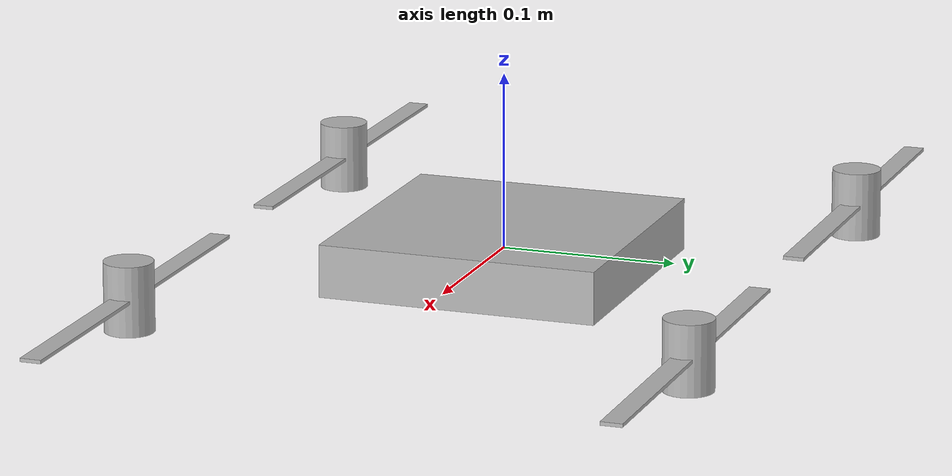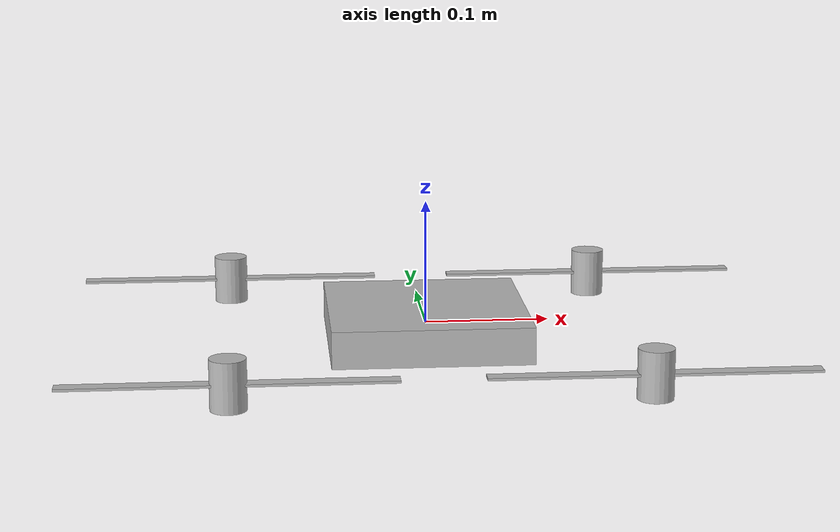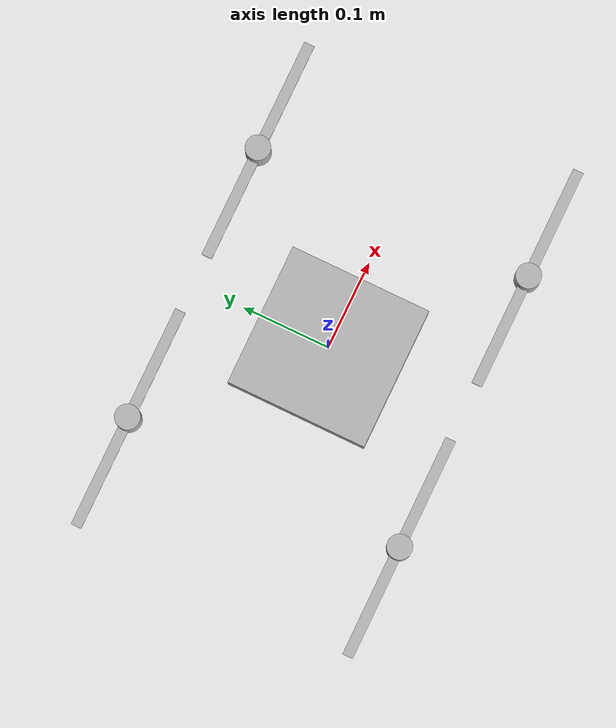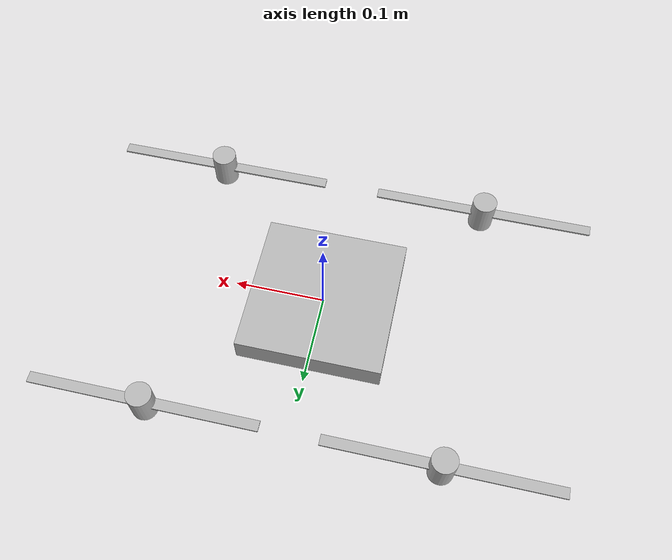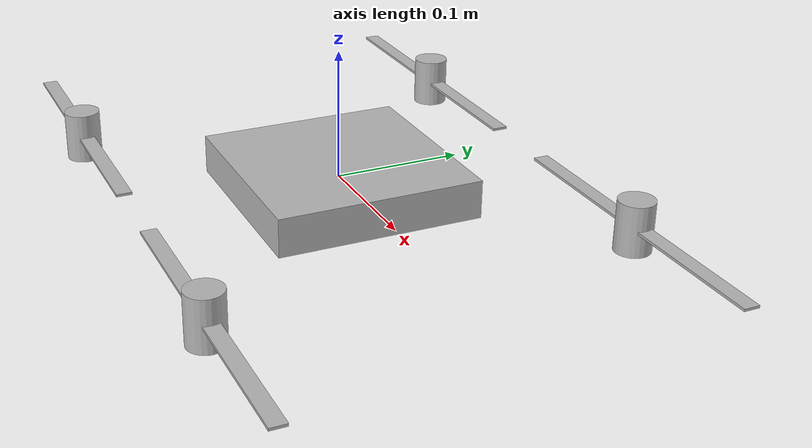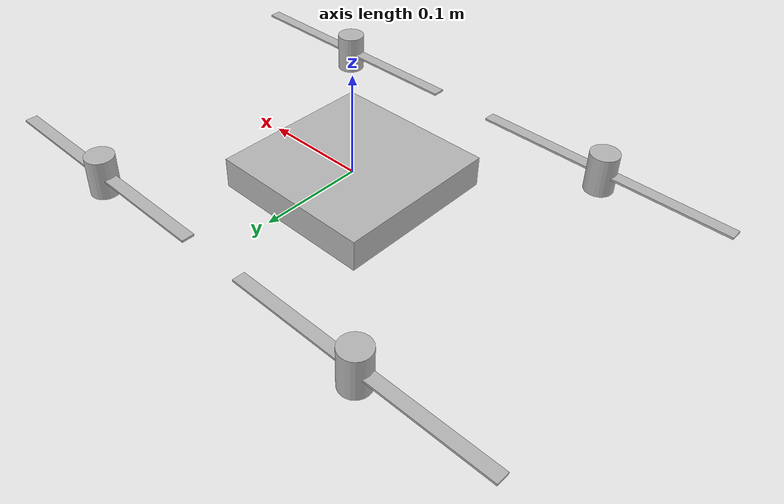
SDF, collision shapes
<?xml version="1.0" ?>
<sdf version="1.9">

  <model name="f450">

    <!-- MAIN FRAME -->

    <link name="base_link">
      <visual name="f450_cad_visual">
        <pose> -0.182 0.2783 0.14925 0 0 0 </pose>
        <geometry>
          <mesh>
            <uri>model://f450/F450 Quadcopter Frame with Pixhawk 2.4.8 Flight Controller.obj</uri>
          </mesh>
        </geometry>
      </visual>

      <pose>0 0 0 0 0 0</pose>

      <collision name="frame_collision">
        <geometry>
          <box>
            <size>0.16 0.16 0.03</size>
          </box>
        </geometry>
      </collision>

      <inertial>

        <mass>0.652</mass>

        <inertia>
          <ixx>0.00253</ixx>
          <iyy>0.00253</iyy>
          <izz>0.00506</izz>

          <ixy>0</ixy>
          <ixz>0</ixz>
          <iyz>0</iyz>
        </inertia>

      </inertial>

      <sensor name="imu_sensor" type="imu">
        <gz_frame_id>base_link</gz_frame_id>
        <always_on>1</always_on>
        <update_rate>250</update_rate>

        <imu>
          <angular_velocity>
            <x>
              <noise type="gaussian">
                <mean>0.0</mean>
                <stddev>0.0008726646</stddev>
              </noise>
            </x>
            <y>
              <noise type="gaussian">
                <mean>0.0</mean>
                <stddev>0.0008726646</stddev>
              </noise>
            </y>
            <z>
              <noise type="gaussian">
                <mean>0.0</mean>
                <stddev>0.0008726646</stddev>
              </noise>
            </z>
          </angular_velocity>

          <linear_acceleration>
            <x>
              <noise type="gaussian">
                <mean>0.0</mean>
                <stddev>0.00637</stddev>
              </noise>
            </x>
            <y>
              <noise type="gaussian">
                <mean>0.0</mean>
                <stddev>0.00637</stddev>
              </noise>
            </y>
            <z>
              <noise type="gaussian">
                <mean>0.0</mean>
                <stddev>0.00686</stddev>
              </noise>
            </z>
          </linear_acceleration>
        </imu>
      </sensor>

      <sensor name="air_pressure_sensor" type="air_pressure">
        <gz_frame_id>base_link</gz_frame_id>
        <always_on>1</always_on>
        <update_rate>50</update_rate>

        <air_pressure>
          <pressure>
            <noise type="gaussian">
              <mean>0</mean>
              <stddev>3</stddev>
            </noise>
          </pressure>
        </air_pressure>
      </sensor>

      <sensor name="magnetometer_sensor" type="magnetometer">
        <gz_frame_id>base_link</gz_frame_id>
        <always_on>1</always_on>
        <update_rate>100</update_rate>

        <magnetometer>
          <x>
            <noise type="gaussian">
              <stddev>0.0001</stddev>
            </noise>
          </x>
          <y>
            <noise type="gaussian">
              <stddev>0.0001</stddev>
            </noise>
          </y>
          <z>
            <noise type="gaussian">
              <stddev>0.0001</stddev>
            </noise>
          </z>
        </magnetometer>
      </sensor>

      <sensor name="navsat_sensor" type="navsat">
        <gz_frame_id>base_link</gz_frame_id>
        <always_on>1</always_on>
        <update_rate>30</update_rate>
      </sensor>

    </link>

    <!-- MOTOR 0 - FIXED -->

    <link name="motor_0">

      <pose>0.1591 0.1591 0 0 0 0</pose>

      <inertial>

        <mass>0.053</mass>

        <inertia>
          <ixx>8.16e-06</ixx>
          <iyy>8.16e-06</iyy>
          <izz>5.19e-06</izz>

          <ixy>0</ixy>
          <ixz>0</ixz>
          <iyz>0</iyz>
        </inertia>

      </inertial>

      <collision name="motor_collision">
        <geometry>
          <cylinder>
            <radius>0.014</radius>
            <length>0.0395</length>
          </cylinder>
        </geometry>
      </collision>

    </link>

    <!-- MOTOR 1 - FIXED -->

    <link name="motor_1">

      <pose>0.1591 -0.1591 0 0 0 0</pose>

      <inertial>

        <mass>0.053</mass>

        <inertia>
          <ixx>8.16e-06</ixx>
          <iyy>8.16e-06</iyy>
          <izz>5.19e-06</izz>

          <ixy>0</ixy>
          <ixz>0</ixz>
          <iyz>0</iyz>
        </inertia>

      </inertial>

      <collision name="motor_collision">
        <geometry>
          <cylinder>
            <radius>0.014</radius>
            <length>0.0395</length>
          </cylinder>
        </geometry>
      </collision>

    </link>

    <!-- MOTOR 2 - FIXED -->

    <link name="motor_2">

      <pose>-0.1591 0.1591 0 0 0 0</pose>

      <inertial>

        <mass>0.053</mass>

        <inertia>
          <ixx>8.16e-06</ixx>
          <iyy>8.16e-06</iyy>
          <izz>5.19e-06</izz>

          <ixy>0</ixy>
          <ixz>0</ixz>
          <iyz>0</iyz>
        </inertia>

      </inertial>

      <collision name="motor_collision">
        <geometry>
          <cylinder>
            <radius>0.014</radius>
            <length>0.0395</length>
          </cylinder>
        </geometry>
      </collision>

    </link>

    <!-- MOTOR 3 - FIXED -->

    <link name="motor_3">

      <pose>-0.1591 -0.1591 0 0 0 0</pose>

      <inertial>

        <mass>0.053</mass>

        <inertia>
          <ixx>8.16e-06</ixx>
          <iyy>8.16e-06</iyy>
          <izz>5.19e-06</izz>

          <ixy>0</ixy>
          <ixz>0</ixz>
          <iyz>0</iyz>
        </inertia>

      </inertial>

      <collision name="motor_collision">
        <geometry>
          <cylinder>
            <radius>0.014</radius>
            <length>0.0395</length>
          </cylinder>
        </geometry>
      </collision>

    </link>

    <!-- PROPELLER 0 -->

    <link name="propeller_0">

      <pose>0.1591 0.1591 0 0 0 0</pose>

      <inertial>

        <mass>0.009</mass>

        <inertia>
          <ixx>1e-8</ixx>
          <iyy>1e-8</iyy>
          <izz>1e-8</izz>

          <ixy>0</ixy>
          <ixz>0</ixz>
          <iyz>0</iyz>
        </inertia>

      </inertial>

      <collision name="propeller_collision">
        <geometry>
          <box>
            <size>0.254 0.012 0.002</size>
          </box>
        </geometry>
      </collision>

    </link>

    <!-- PROPELLER 1 -->

    <link name="propeller_1">

      <pose>0.1591 -0.1591 0 0 0 0</pose>

      <inertial>

        <mass>0.009</mass>

        <inertia>
          <ixx>1e-8</ixx>
          <iyy>1e-8</iyy>
          <izz>1e-8</izz>

          <ixy>0</ixy>
          <ixz>0</ixz>
          <iyz>0</iyz>
        </inertia>

      </inertial>

      <collision name="propeller_collision">
        <geometry>
          <box>
            <size>0.254 0.012 0.002</size>
          </box>
        </geometry>
      </collision>

    </link>

    <!-- PROPELLER 2 -->

    <link name="propeller_2">

      <pose>-0.1591 0.1591 0 0 0 0</pose>

      <inertial>

        <mass>0.009</mass>

        <inertia>
          <ixx>1e-8</ixx>
          <iyy>1e-8</iyy>
          <izz>1e-8</izz>

          <ixy>0</ixy>
          <ixz>0</ixz>
          <iyz>0</iyz>
        </inertia>

      </inertial>

      <collision name="propeller_collision">
        <geometry>
          <box>
            <size>0.254 0.012 0.002</size>
          </box>
        </geometry>
      </collision>

    </link>

    <!-- PROPELLER 3 -->

    <link name="propeller_3">

      <pose>-0.1591 -0.1591 0 0 0 0</pose>

      <inertial>

        <mass>0.009</mass>

        <inertia>
          <ixx>1e-8</ixx>
          <iyy>1e-8</iyy>
          <izz>1e-8</izz>

          <ixy>0</ixy>
          <ixz>0</ixz>
          <iyz>0</iyz>
        </inertia>

      </inertial>

      <collision name="propeller_collision">
        <geometry>
          <box>
            <size>0.254 0.012 0.002</size>
          </box>
        </geometry>
      </collision>

    </link>

    <!-- FIX MOTOR HOUSINGS -->

    <joint name="motor_0_mount" type="fixed">
      <parent>base_link</parent>
      <child>motor_0</child>
    </joint>

    <joint name="motor_1_mount" type="fixed">
      <parent>base_link</parent>
      <child>motor_1</child>
    </joint>

    <joint name="motor_2_mount" type="fixed">
      <parent>base_link</parent>
      <child>motor_2</child>
    </joint>

    <joint name="motor_3_mount" type="fixed">
      <parent>base_link</parent>
      <child>motor_3</child>
    </joint>

    <!-- PROPELLER REVOLUTE JOINTS -->

    <joint name="propeller_0_joint" type="revolute">
      <parent>motor_0</parent>
      <child>propeller_0</child>

      <axis>
        <xyz>0 0 1</xyz>
      </axis>
    </joint>

    <joint name="propeller_1_joint" type="revolute">
      <parent>motor_1</parent>
      <child>propeller_1</child>

      <axis>
        <xyz>0 0 1</xyz>
      </axis>
    </joint>

    <joint name="propeller_2_joint" type="revolute">
      <parent>motor_2</parent>
      <child>propeller_2</child>

      <axis>
        <xyz>0 0 1</xyz>
      </axis>
    </joint>

    <joint name="propeller_3_joint" type="revolute">
      <parent>motor_3</parent>
      <child>propeller_3</child>

      <axis>
        <xyz>0 0 1</xyz>
      </axis>
    </joint>

    <!-- MOTOR 0 PLUGIN -->

    <plugin
      filename="gz-sim-multicopter-motor-model-system"
      name="gz::sim::systems::MulticopterMotorModel">

      <robotNamespace>/f450_0</robotNamespace>
      <jointName>propeller_0_joint</jointName>
      <linkName>propeller_0</linkName>

      <turningDirection>ccw</turningDirection>

      <timeConstantUp>0.0125</timeConstantUp>
      <timeConstantDown>0.025</timeConstantDown>

      <maxRotVelocity>684</maxRotVelocity>

      <motorConstant>1.37e-05</motorConstant>
      <momentConstant>0.0155</momentConstant>

      <commandSubTopic>command/motor_speed</commandSubTopic>
      <motorNumber>0</motorNumber>

      <rotorDragCoefficient>8.06428e-05</rotorDragCoefficient>
      <rollingMomentCoefficient>1e-06</rollingMomentCoefficient>

    </plugin>

    <!-- MOTOR 1 PLUGIN -->

    <plugin
      filename="gz-sim-multicopter-motor-model-system"
      name="gz::sim::systems::MulticopterMotorModel">

      <robotNamespace>/f450_0</robotNamespace>
      <jointName>propeller_1_joint</jointName>
      <linkName>propeller_1</linkName>

      <turningDirection>cw</turningDirection>

      <timeConstantUp>0.0125</timeConstantUp>
      <timeConstantDown>0.025</timeConstantDown>

      <maxRotVelocity>684</maxRotVelocity>

      <motorConstant>1.37e-05</motorConstant>
      <momentConstant>0.0155</momentConstant>

      <commandSubTopic>command/motor_speed</commandSubTopic>
      <motorNumber>1</motorNumber>

      <rotorDragCoefficient>8.06428e-05</rotorDragCoefficient>
      <rollingMomentCoefficient>1e-06</rollingMomentCoefficient>

    </plugin>

    <!-- MOTOR 2 PLUGIN -->

    <plugin
      filename="gz-sim-multicopter-motor-model-system"
      name="gz::sim::systems::MulticopterMotorModel">

      <robotNamespace>/f450_0</robotNamespace>
      <jointName>propeller_2_joint</jointName>
      <linkName>propeller_2</linkName>

      <turningDirection>cw</turningDirection>

      <timeConstantUp>0.0125</timeConstantUp>
      <timeConstantDown>0.025</timeConstantDown>

      <maxRotVelocity>684</maxRotVelocity>

      <motorConstant>1.37e-05</motorConstant>
      <momentConstant>0.0155</momentConstant>

      <commandSubTopic>command/motor_speed</commandSubTopic>
      <motorNumber>2</motorNumber>

      <rotorDragCoefficient>8.06428e-05</rotorDragCoefficient>
      <rollingMomentCoefficient>1e-06</rollingMomentCoefficient>

    </plugin>

    <!-- MOTOR 3 PLUGIN -->

    <plugin
      filename="gz-sim-multicopter-motor-model-system"
      name="gz::sim::systems::MulticopterMotorModel">

      <robotNamespace>/f450_0</robotNamespace>
      <jointName>propeller_3_joint</jointName>
      <linkName>propeller_3</linkName>

      <turningDirection>ccw</turningDirection>

      <timeConstantUp>0.0125</timeConstantUp>
      <timeConstantDown>0.025</timeConstantDown>

      <maxRotVelocity>684</maxRotVelocity>

      <motorConstant>1.37e-05</motorConstant>
      <momentConstant>0.0155</momentConstant>

      <commandSubTopic>command/motor_speed</commandSubTopic>
      <motorNumber>3</motorNumber>

      <rotorDragCoefficient>8.06428e-05</rotorDragCoefficient>
      <rollingMomentCoefficient>1e-06</rollingMomentCoefficient>

    </plugin>

  </model>

</sdf>
